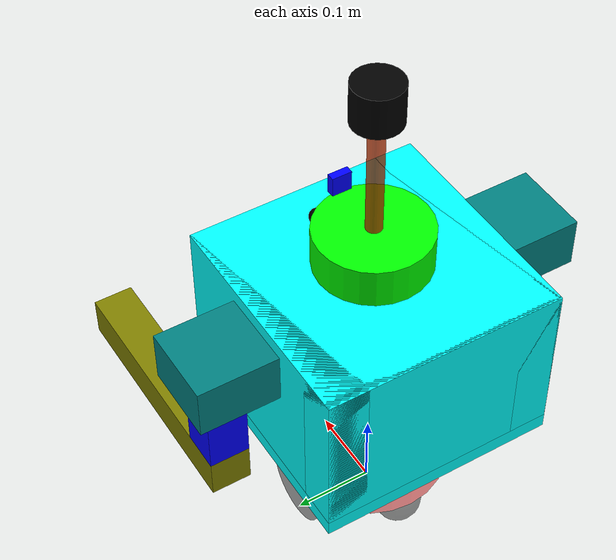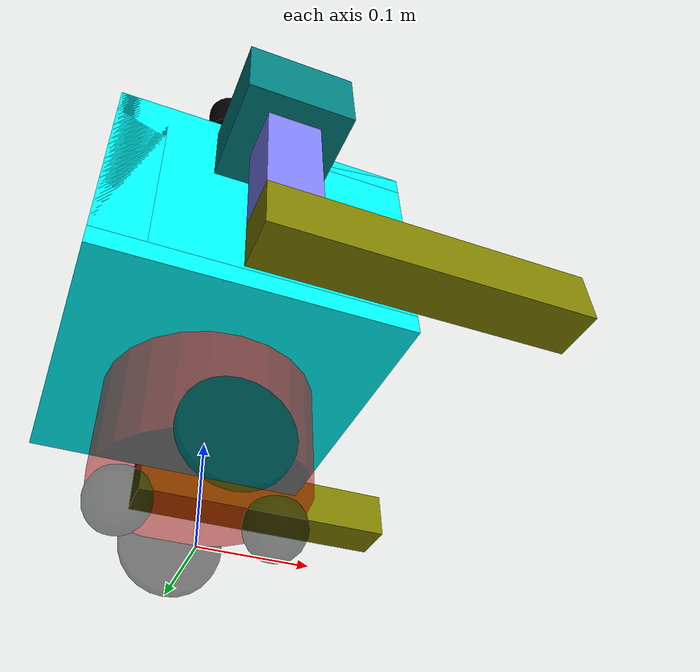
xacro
<!--
    组合小车底盘与摄像头与雷达 - Gazebo仿真版本
    包含完整的物理属性和传感器插件配置
-->
<robot name="mycar" xmlns:xacro="http://wiki.ros.org/xacro">

    <!-- 包含各个组件文件 -->

    <!-- 基础定义和宏 -->
    <xacro:include filename="head.xacro" />

    <!-- 小车底盘 -->
    <xacro:include filename="robot.urdf.xacro" />

    <!-- 摄像头 -->
    <xacro:include filename="demo06_car_camera.xacro" />

    <!-- 雷达 -->
    <xacro:include filename="demo07_car_laser.xacro" />

    <xacro:include filename="gazebo/move.xacro" />

</robot>

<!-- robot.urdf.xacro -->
<!--
    完整机器人模型 - Gazebo仿真版本
    包含底盘、轮子、身体、腿部、头部等部件
    参数集中定义，便于维护和修改
-->
<robot name="mycar" xmlns:xacro="http://www.ros.org/wiki/xacro">

    <!--                          参数定义区 (集中管理)                            -->

    <!-- 底盘参数 (base_link) -->
    <xacro:property name="base_radius" value="0.1" />        <!-- 底盘半径: 10cm -->
    <xacro:property name="base_height" value="0.1" />       <!-- 底盘高度: 10cm -->
    <xacro:property name="base_z_offset" value="0.1" />     <!-- 底盘离地高度 -->
    <xacro:property name="base_mass" value="2.0" />         <!-- 底盘质量: 2kg -->

    <!-- 驱动轮参数 -->
    <xacro:property name="wheel_radius" value="0.05" />     <!-- 轮子半径: 5cm -->
    <xacro:property name="wheel_length" value="0.01" />     <!-- 轮子宽度: 1cm -->
    <xacro:property name="wheel_y_offset" value="0.1" />    <!-- 轮子Y方向偏移 -->
    <xacro:property name="wheel_z_offset" value="-0.05" />  <!-- 轮子Z方向偏移 -->
    <xacro:property name="wheel_mass" value="0.2" />        <!-- 轮子质量: 0.2kg -->
    <xacro:property name="wheel_separation" value="0.2" />  <!-- 左右轮距 -->

    <!-- 万向轮参数 -->
    <xacro:property name="caster_radius" value="0.03" />    <!-- 万向轮半径: 3cm -->
    <xacro:property name="caster_mass" value="0.05" />      <!-- 万向轮质量: 0.05kg -->
    <xacro:property name="caster_front_x" value="0.07" />   <!-- 前万向轮X偏移 -->
    <xacro:property name="caster_back_x" value="-0.07" />   <!-- 后万向轮X偏移 -->
    <xacro:property name="caster_z_offset" value="-0.07" /> <!-- 万向轮Z偏移 -->

    <!-- 身体平台参数 (box1-box5) -->
    <!-- 底层平台 box1 -->
    <xacro:property name="box1_x" value="0.3" />
    <xacro:property name="box1_y" value="0.3" />
    <xacro:property name="box1_z" value="0.02" />
    <xacro:property name="box1_mass" value="0.5" />
    <xacro:property name="box1_z_offset" value="0.07" />

    <!-- 后面板 box2 -->
    <xacro:property name="box2_x" value="0.05" />
    <xacro:property name="box2_y" value="0.3" />
    <xacro:property name="box2_z" value="0.2" />
    <xacro:property name="box2_mass" value="0.3" />
    <xacro:property name="box2_x_offset" value="-0.125" />
    <xacro:property name="box2_z_offset" value="0.18" />

    <!-- 左侧板 box3 -->
    <xacro:property name="box3_x" value="0.3" />
    <xacro:property name="box3_y" value="0.05" />
    <xacro:property name="box3_z" value="0.2" />
    <xacro:property name="box3_mass" value="0.3" />
    <xacro:property name="box3_y_offset" value="0.125" />
    <xacro:property name="box3_z_offset" value="0.18" />

    <!-- 右侧板 box4 -->
    <xacro:property name="box4_x" value="0.3" />
    <xacro:property name="box4_y" value="0.05" />
    <xacro:property name="box4_z" value="0.2" />
    <xacro:property name="box4_mass" value="0.3" />
    <xacro:property name="box4_y_offset" value="-0.125" />
    <xacro:property name="box4_z_offset" value="0.18" />

    <!-- 顶层平台 box5 -->
    <xacro:property name="box5_x" value="0.3" />
    <xacro:property name="box5_y" value="0.3" />
    <xacro:property name="box5_z" value="0.02" />
    <xacro:property name="box5_mass" value="0.5" />
    <xacro:property name="box5_z_offset" value="0.27" />

    <!-- 腿部参数 -->
    <!-- 左右腿上段 -->
    <xacro:property name="leg_x" value="0.05" />
    <xacro:property name="leg_y" value="0.05" />
    <xacro:property name="leg_z" value="0.16" />
    <xacro:property name="leg_mass" value="0.2" />
    <xacro:property name="leg_y_offset" value="0.08" />

    <!-- 左右腿下段 (leg1) -->
    <xacro:property name="leg1_x" value="0.3" />
    <xacro:property name="leg1_y" value="0.05" />
    <xacro:property name="leg1_z" value="0.05" />
    <xacro:property name="leg1_mass" value="0.3" />
    <xacro:property name="leg1_x_offset" value="0.125" />
    <xacro:property name="leg1_z_offset" value="-0.105" />

    <!-- 头部参数 -->
    <!-- 脖子 -->
    <xacro:property name="neck_radius" value="0.04" />
    <xacro:property name="neck_height" value="0.01" />
    <xacro:property name="neck_mass" value="0.1" />
    <xacro:property name="neck_z_offset" value="0.015" />

    <!-- 头部 -->
    <xacro:property name="head_radius" value="0.07" />
    <xacro:property name="head_height" value="0.05" />
    <xacro:property name="head_mass" value="0.3" />
    <xacro:property name="head_z_offset" value="0.03" />

    <!-- 眼睛 -->
    <xacro:property name="eye_radius" value="0.01" />
    <xacro:property name="eye_mass" value="0.01" />
    <xacro:property name="eye1_y_offset" value="0.035" />
    <xacro:property name="eye2_y_offset" value="-0.035" />
    <xacro:property name="eye_x_offset" value="0.06" />
    <xacro:property name="eye_z_offset" value="0.01" />

    <!-- 关节部件参数 -->
    <xacro:property name="joint_x" value="0.1" />
    <xacro:property name="joint_y" value="0.14" />
    <xacro:property name="joint_z" value="0.065" />
    <xacro:property name="joint_mass" value="0.2" />
    <xacro:property name="joint_y_offset" value="0.055" />
    <xacro:property name="joint_z_offset" value="0.05" />

    <!-- body_link 参数 -->
    <xacro:property name="body_radius" value="0.025" />
    <xacro:property name="body_height" value="0.01" />
    <xacro:property name="body_mass" value="0.1" />
    <xacro:property name="body_z_offset" value="0.055" />

    <!--                            宏定义区                                      -->

    <!-- 惯性矩阵计算宏 -->

    <!-- 圆柱体惯性宏 -->
    <xacro:macro name="cylinder_inertial" params="mass radius length">
        <inertial>
            <mass value="${mass}" />
            <origin xyz="0 0 0" rpy="0 0 0" />
            <inertia ixx="${mass * (3*radius*radius + length*length) / 12}"
                     ixy="0" ixz="0"
                     iyy="${mass * (3*radius*radius + length*length) / 12}"
                     iyz="0"
                     izz="${mass * radius*radius / 2}" />
        </inertial>
    </xacro:macro>

    <!-- 长方体惯性宏 -->
    <xacro:macro name="box_inertial" params="mass x y z">
        <inertial>
            <mass value="${mass}" />
            <origin xyz="0 0 0" rpy="0 0 0" />
            <inertia ixx="${mass * (y*y + z*z) / 12}"
                     ixy="0" ixz="0"
                     iyy="${mass * (x*x + z*z) / 12}"
                     iyz="0"
                     izz="${mass * (x*x + y*y) / 12}" />
        </inertial>
    </xacro:macro>

    <!-- 球体惯性宏 -->
    <xacro:macro name="sphere_inertial" params="mass radius">
        <inertial>
            <mass value="${mass}" />
            <origin xyz="0 0 0" rpy="0 0 0" />
            <inertia ixx="${2 * mass * radius * radius / 5}"
                     ixy="0" ixz="0"
                     iyy="${2 * mass * radius * radius / 5}"
                     iyz="0"
                     izz="${2 * mass * radius * radius / 5}" />
        </inertial>
    </xacro:macro>

    <!-- 材质定义宏 -->
    <xacro:macro name="baselink_material">
        <material name="baselink_color">
            <color rgba="1 0 0 0.5" />
        </material>
    </xacro:macro>

    <xacro:macro name="wheel_material">
        <material name="wheel_color">
            <color rgba="0.0 0.0 0.0 0.5" />
        </material>
    </xacro:macro>

    <!-- 驱动轮宏定义 -->
    <xacro:macro name="drive_wheel" params="name y_offset">
        <link name="${name}">
            <visual>
                <geometry>
                    <cylinder radius="${wheel_radius}" length="${wheel_length}" />
                </geometry>
                <origin xyz="0 0 0" rpy="1.5708 0 0" />
                <xacro:wheel_material />
            </visual>
            <collision>
                <geometry>
                    <cylinder radius="${wheel_radius}" length="${wheel_length}" />
                </geometry>
                <origin xyz="0 0 0" rpy="1.5708 0 0" />
            </collision>
            <xacro:cylinder_inertial mass="${wheel_mass}" radius="${wheel_radius}" length="${wheel_length}" />
        </link>

        <joint name="${name}2_link" type="continuous">
            <parent link="base_link" />
            <child link="${name}" />
            <origin xyz="0 ${y_offset} ${wheel_z_offset}" />
            <axis xyz="0 1 0" />
        </joint>
    </xacro:macro>

    <!-- 万向轮宏定义 -->
    <xacro:macro name="caster_wheel" params="name x_offset">
        <link name="${name}">
            <visual>
                <geometry>
                    <sphere radius="${caster_radius}" />
                </geometry>
                <origin xyz="0 0 0" rpy="0 0 0" />
                <xacro:wheel_material />
            </visual>
            <collision>
                <geometry>
                    <sphere radius="${caster_radius}" />
                </geometry>
                <origin xyz="0 0 0" rpy="0 0 0" />
            </collision>
            <xacro:sphere_inertial mass="${caster_mass}" radius="${caster_radius}" />
        </link>

        <joint name="${name}2_link" type="continuous">
            <parent link="base_link" />
            <child link="${name}" />
            <origin xyz="${x_offset} 0 ${caster_z_offset}" />
            <axis xyz="1 1 1" />
        </joint>
    </xacro:macro>

    <!-- 身体平台宏定义 -->
    <xacro:macro name="box_platform" params="name x y z mass x_offset y_offset z_offset joint_type">
        <link name="${name}">
            <visual>
                <geometry>
                    <box size="${x} ${y} ${z}"/>
                </geometry>
                <origin xyz="0 0 0" rpy="0 0 0" />
                <material name="box_color">
                    <color rgba="0.0 1.0 1.0 1" />
                </material>
            </visual>
            <collision>
                <geometry>
                    <box size="${x} ${y} ${z}"/>
                </geometry>
            </collision>
            <xacro:box_inertial mass="${mass}" x="${x}" y="${y}" z="${z}" />
        </link>

        <joint name="${name}2_link" type="${joint_type}">
            <parent link="base_link" />
            <child link="${name}" />
            <origin xyz="${x_offset} ${y_offset} ${z_offset}" />
            <xacro:if value="${joint_type != 'fixed'}">
                <axis xyz="0 1 0" />
            </xacro:if>
        </joint>
    </xacro:macro>

    <!-- 腿部宏定义 -->
    <xacro:macro name="leg" params="name parent y_offset color_r color_g color_b joint_type">
        <link name="${name}">
            <visual>
                <geometry>
                    <box size="${leg_x} ${leg_y} ${leg_z}" />
                </geometry>
                <origin xyz="0 0 0" rpy="0 0 0" />
                <material name="${name}_color">
                    <color rgba="${color_r} ${color_g} ${color_b} 1" />
                </material>
            </visual>
            <collision>
                <geometry>
                    <box size="${leg_x} ${leg_y} ${leg_z}" />
                </geometry>
            </collision>
            <xacro:box_inertial mass="${leg_mass}" x="${leg_x}" y="${leg_y}" z="${leg_z}" />
        </link>

        <joint name="${name}2_link" type="${joint_type}">
            <parent link="${parent}" />
            <child link="${name}" />
            <origin xyz="0 ${y_offset} 0" />
            <xacro:if value="${joint_type == 'continuous'}">
                <axis xyz="0 1 0" />
            </xacro:if>
        </joint>

        <!-- 腿下段 -->
        <link name="${name}1">
            <visual>
                <geometry>
                    <box size="${leg1_x} ${leg1_y} ${leg1_z}" />
                </geometry>
                <origin xyz="0 0 0" rpy="0 0 0" />
                <material name="${name}1_color">
                    <color rgba="0.5 0.5 0 1" />
                </material>
            </visual>
            <collision>
                <geometry>
                    <box size="${leg1_x} ${leg1_y} ${leg1_z}" />
                </geometry>
            </collision>
            <xacro:box_inertial mass="${leg1_mass}" x="${leg1_x}" y="${leg1_y}" z="${leg1_z}" />
        </link>

        <joint name="${name}12_link" type="${joint_type}">
            <parent link="${name}" />
            <child link="${name}1" />
            <origin xyz="${leg1_x_offset} 0 ${leg1_z_offset}" />
            <xacro:if value="${joint_type == 'continuous'}">
                <axis xyz="0 1 0" />
            </xacro:if>
        </joint>
    </xacro:macro>

    <!-- 眼睛宏定义 -->
    <xacro:macro name="eye" params="name y_offset joint_type">
        <link name="${name}">
            <visual>
                <geometry>
                    <sphere radius="${eye_radius}" />
                </geometry>
                <origin xyz="0 0 0" rpy="0 0 0" />
                <material name="${name}_color">
                    <color rgba="0 0 0 1" />
                </material>
            </visual>
            <collision>
                <geometry>
                    <sphere radius="${eye_radius}" />
                </geometry>
            </collision>
            <xacro:sphere_inertial mass="${eye_mass}" radius="${eye_radius}" />
        </link>

        <joint name="${name}2_link" type="${joint_type}">
            <parent link="head_link" />
            <child link="${name}" />
            <origin xyz="${eye_x_offset} ${y_offset} ${eye_z_offset}" />
            <xacro:if value="${joint_type == 'continuous'}">
                <axis xyz="1 1 1" />
            </xacro:if>
        </joint>
    </xacro:macro>

    <!-- 关节部件宏定义 -->
    <xacro:macro name="arm_joint" params="name parent y_offset joint_type">
        <link name="${name}">
            <visual>
                <geometry>
                    <box size="${joint_x} ${joint_y} ${joint_z}" />
                </geometry>
                <origin xyz="0 0 0" rpy="0 0 0" />
                <material name="${name}_color">
                    <color rgba="0 0.5 0.5 1" />
                </material>
            </visual>
            <collision>
                <geometry>
                    <box size="${joint_x} ${joint_y} ${joint_z}" />
                </geometry>
            </collision>
            <xacro:box_inertial mass="${joint_mass}" x="${joint_x}" y="${joint_y}" z="${joint_z}" />
        </link>

        <joint name="${name}2_link" type="${joint_type}">
            <parent link="${parent}" />
            <child link="${name}" />
            <origin xyz="0 ${y_offset} ${joint_z_offset}" />
            <xacro:if value="${joint_type == 'continuous'}">
                <axis xyz="0 1 0" />
            </xacro:if>
        </joint>
    </xacro:macro>

    <!--                          机器人结构区                                    -->

    <!-- base_footprint -->
    <link name="base_footprint">
        <visual>
            <geometry>
                <sphere radius="0.001" />
            </geometry>
        </visual>
    </link>

    <!-- base_link - 圆柱底盘 -->
    <link name="base_link">
        <visual>
            <geometry>
                <cylinder radius="${base_radius}" length="${base_height}" />
            </geometry>
            <origin xyz="0 0 0" rpy="0 0 0" />
            <xacro:baselink_material />
        </visual>
        <collision>
            <geometry>
                <cylinder radius="${base_radius}" length="${base_height}" />
            </geometry>
            <origin xyz="0 0 0" rpy="0 0 0" />
        </collision>
        <xacro:cylinder_inertial mass="${base_mass}" radius="${base_radius}" length="${base_height}" />
    </link>

    <joint name="link2footprint" type="fixed">
        <parent link="base_footprint" />
        <child link="base_link"/>
        <origin xyz="0 0 ${base_z_offset}" />
    </joint>

    <!-- 左驱动轮 -->
    <xacro:drive_wheel name="left_wheel" y_offset="${wheel_y_offset}" />

    <!-- 右驱动轮 -->
    <xacro:drive_wheel name="right_wheel" y_offset="-${wheel_y_offset}" />

    <!-- 前万向轮 -->
    <xacro:caster_wheel name="front_wheel" x_offset="${caster_front_x}" />

    <!-- 后万向轮 -->
    <xacro:caster_wheel name="back_wheel" x_offset="${caster_back_x}" />

    <!-- body_link -->
    <link name="body_link">
        <visual>
            <geometry>
                <cylinder radius="${body_radius}" length="${body_height}" />
            </geometry>
            <origin xyz="0 0 0" rpy="0 0 0" />
            <material name="bodylink_color">
                <color rgba="0 0.5 0.5 0.5" />
            </material>
        </visual>
        <collision>
            <geometry>
                <cylinder radius="${body_radius}" length="${body_height}" />
            </geometry>
        </collision>
        <xacro:cylinder_inertial mass="${body_mass}" radius="${body_radius}" length="${body_height}" />
    </link>

    <joint name="body2footprint" type="fixed">
        <parent link="base_link" />
        <child link="body_link" />
        <origin xyz="0 0 ${body_z_offset}" />
    </joint>

    <!-- 身体平台 box1-box5 -->
    <xacro:box_platform name="box1" x="${box1_x}" y="${box1_y}" z="${box1_z}"
                        mass="${box1_mass}" x_offset="0" y_offset="0" z_offset="${box1_z_offset}"
                        joint_type="fixed" />

    <xacro:box_platform name="box2" x="${box2_x}" y="${box2_y}" z="${box2_z}"
                        mass="${box2_mass}" x_offset="${box2_x_offset}" y_offset="0" z_offset="${box2_z_offset}"
                        joint_type="fixed" />

    <xacro:box_platform name="box3" x="${box3_x}" y="${box3_y}" z="${box3_z}"
                        mass="${box3_mass}" x_offset="0" y_offset="${box3_y_offset}" z_offset="${box3_z_offset}"
                        joint_type="fixed" />

    <xacro:box_platform name="box4" x="${box4_x}" y="${box4_y}" z="${box4_z}"
                        mass="${box4_mass}" x_offset="0" y_offset="${box4_y_offset}" z_offset="${box4_z_offset}"
                        joint_type="fixed" />

    <xacro:box_platform name="box5" x="${box5_x}" y="${box5_y}" z="${box5_z}"
                        mass="${box5_mass}" x_offset="0" y_offset="0" z_offset="${box5_z_offset}"
                        joint_type="fixed" />

    <!-- 腿部 -->
    <xacro:leg name="left_leg" parent="box3" y_offset="${leg_y_offset}"
               color_r="0.0" color_g="0.0" color_b="1.0" joint_type="fixed" />
    <xacro:leg name="right_leg" parent="box4" y_offset="-${leg_y_offset}"
               color_r="0.5" color_g="0.5" color_b="1.0" joint_type="fixed" />

    <!-- 脖子 -->
    <link name="neck_link">
        <visual>
            <geometry>
                <cylinder radius="${neck_radius}" length="${neck_height}" />
            </geometry>
            <origin xyz="0 0 0" rpy="0 0 0" />
            <material name="neck_color">
                <color rgba="0.5 0.1 0.1 1" />
            </material>
        </visual>
        <collision>
            <geometry>
                <cylinder radius="${neck_radius}" length="${neck_height}" />
            </geometry>
        </collision>
        <xacro:cylinder_inertial mass="${neck_mass}" radius="${neck_radius}" length="${neck_height}" />
    </link>

    <joint name="neck2footprint" type="fixed">
        <parent link="box5" />
        <child link="neck_link" />
        <origin xyz="0 0 ${neck_z_offset}" />
    </joint>

    <!-- 头部 -->
    <link name="head_link">
        <visual>
            <geometry>
                <cylinder radius="${head_radius}" length="${head_height}" />
            </geometry>
            <origin xyz="0 0 0" rpy="0 0 0" />
            <material name="head_color">
                <color rgba="0 1 0 1" />
            </material>
        </visual>
        <collision>
            <geometry>
                <cylinder radius="${head_radius}" length="${head_height}" />
            </geometry>
        </collision>
        <xacro:cylinder_inertial mass="${head_mass}" radius="${head_radius}" length="${head_height}" />
    </link>

    <joint name="head2footprint" type="fixed">
        <parent link="neck_link" />
        <child link="head_link" />
        <origin xyz="0 0 ${head_z_offset}" />
    </joint>

    <!-- 眼睛 -->
    <xacro:eye name="eye1" y_offset="${eye1_y_offset}" joint_type="fixed" />
    <xacro:eye name="eye2" y_offset="${eye2_y_offset}" joint_type="fixed" />

    <!-- 手臂关节 -->
    <xacro:arm_joint name="left_joint" parent="box3" y_offset="${joint_y_offset}" joint_type="fixed" />
    <xacro:arm_joint name="right_joint" parent="box4" y_offset="-${joint_y_offset}" joint_type="fixed" />

    <!--                       Gazebo 仿真配置区                                  -->

    <!-- Gazebo 材质设置 -->

    <!-- 底盘 - 红色 -->
    <gazebo reference="base_link">
        <material>Gazebo/Red</material>
    </gazebo>

    <!-- 驱动轮 - 深灰色，高摩擦 -->
    <gazebo reference="left_wheel">
        <material>Gazebo/Black</material>
        <mu1>1.5</mu1>
        <mu2>1.5</mu2>
        <kp>1000000.0</kp>
        <kd>100.0</kd>
        <minDepth>0.001</minDepth>
        <maxVel>1.0</maxVel>
    </gazebo>

    <gazebo reference="right_wheel">
        <material>Gazebo/Black</material>
        <mu1>1.5</mu1>
        <mu2>1.5</mu2>
        <kp>1000000.0</kp>
        <kd>100.0</kd>
        <minDepth>0.001</minDepth>
        <maxVel>1.0</maxVel>
    </gazebo>

    <!-- 万向轮 - 浅灰色，低摩擦 -->
    <gazebo reference="front_wheel">
        <material>Gazebo/White</material>
        <mu1>0.0</mu1>
        <mu2>0.0</mu2>
    </gazebo>

    <gazebo reference="back_wheel">
        <material>Gazebo/White</material>
        <mu1>0.0</mu1>
        <mu2>0.0</mu2>
    </gazebo>

    <!-- body_link - 青绿色 -->
    <gazebo reference="body_link">
        <material>Gazebo/Teal</material>
    </gazebo>

    <!-- 身体平台 - 橙色 -->
    <gazebo reference="box1">
        <material>Gazebo/Orange</material>
    </gazebo>

    <gazebo reference="box2">
        <material>Gazebo/Orange</material>
    </gazebo>

    <gazebo reference="box3">
        <material>Gazebo/Orange</material>
    </gazebo>

    <gazebo reference="box4">
        <material>Gazebo/Orange</material>
    </gazebo>

    <gazebo reference="box5">
        <material>Gazebo/Orange</material>
    </gazebo>

    <!-- 腿部 - 蓝色 -->
    <gazebo reference="left_leg">
        <material>Gazebo/Blue</material>
    </gazebo>

    <gazebo reference="right_leg">
        <material>Gazebo/Blue</material>
    </gazebo>

    <gazebo reference="left_leg1">
        <material>Gazebo/SkyBlue</material>
    </gazebo>

    <gazebo reference="right_leg1">
        <material>Gazebo/SkyBlue</material>
    </gazebo>

    <!-- 脖子 - 棕色 -->
    <gazebo reference="neck_link">
        <material>Gazebo/Wood</material>
    </gazebo>

    <!-- 头部 - 绿色 -->
    <gazebo reference="head_link">
        <material>Gazebo/Green</material>
    </gazebo>

    <!-- 眼睛 - 黑色 -->
    <gazebo reference="eye1">
        <material>Gazebo/Black</material>
    </gazebo>

    <gazebo reference="eye2">
        <material>Gazebo/Black</material>
    </gazebo>

    <!-- 手臂关节 - 紫色 -->
    <gazebo reference="left_joint">
        <material>Gazebo/Purple</material>
    </gazebo>

    <gazebo reference="right_joint">
        <material>Gazebo/Purple</material>
    </gazebo>

    <!-- Gazebo 差速驱动控制器插件 -->
    <gazebo>
        <plugin name="differential_drive_controller" filename="libgazebo_ros_diff_drive.so">
            <leftJoint>left_wheel2_link</leftJoint>
            <rightJoint>right_wheel2_link</rightJoint>
            <wheelSeparation>${wheel_separation}</wheelSeparation>
            <wheelDiameter>${2 * wheel_radius}</wheelDiameter>
            <maxWheelTorque>10</maxWheelTorque>
            <maxWheelAcceleration>1.0</maxWheelAcceleration>
            <commandTopic>cmd_vel</commandTopic>
            <odometryTopic>odom</odometryTopic>
            <odometryFrame>odom</odometryFrame>
            <robotBaseFrame>base_footprint</robotBaseFrame>
            <publishWheelTF>true</publishWheelTF>
            <publishOdomTF>true</publishOdomTF>
            <updateRate>50.0</updateRate>
        </plugin>
    </gazebo>

    <!-- Gazebo 关节状态发布插件 -->
    <gazebo>
        <plugin name="joint_state_publisher" filename="libgazebo_ros_joint_state_publisher.so">
            <jointName>left_wheel2_link, right_wheel2_link, front_wheel2_link, back_wheel2_link</jointName>
            <updateRate>50.0</updateRate>
        </plugin>
    </gazebo>

</robot>

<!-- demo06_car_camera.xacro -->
<!--
    摄像头相关的 xacro 文件 - Gazebo仿真版本
    包含碰撞、惯性属性和摄像头传感器插件
-->
<robot name="my_camera" xmlns:xacro="http://wiki.ros.org/xacro">

    <!-- 摄像头参数定义 -->
    <xacro:property name="camera_length" value="0.01" /> <!-- 摄像头长度(x) -->
    <xacro:property name="camera_width" value="0.025" /> <!-- 摄像头宽度(y) -->
    <xacro:property name="camera_height" value="0.025" /> <!-- 摄像头高度(z) -->
    <xacro:property name="camera_x" value="0.07" /> <!-- 摄像头安装的x坐标 -->
    <xacro:property name="camera_y" value="0.0" /> <!-- 摄像头安装的y坐标 -->
    <xacro:property name="camera_z" value="${head_height/ 2 + camera_height / 2}" /> <!-- 摄像头安装的z坐标 -->
    <xacro:property name="camera_mass" value="0.05" /> <!-- 摄像头质量 kg -->

    <!-- 材质定义 -->
    <material name="blue">
        <color rgba="0 0 1 1"/>
    </material>

    <!-- 惯性矩阵计算宏 - 长方体 -->
    <xacro:macro name="camera_box_inertial" params="mass x y z">
        <inertial>
            <mass value="${mass}" />
            <origin xyz="0 0 0" rpy="0 0 0" />
            <!-- 长方体惯性公式: Ixx = m*(y^2+z^2)/12, Iyy = m*(x^2+z^2)/12, Izz = m*(x^2+y^2)/12 -->
            <inertia ixx="${mass * (y*y + z*z) / 12}"
                     ixy="0"
                     ixz="0"
                     iyy="${mass * (x*x + z*z) / 12}"
                     iyz="0"
                     izz="${mass * (x*x + y*y) / 12}" />
        </inertial>
    </xacro:macro>

    <!-- 摄像头 Link 和 Joint -->
    <link name="camera">
        <!-- 可视化 -->
        <visual>
            <geometry>
                <box size="${camera_length} ${camera_width} ${camera_height}" />
            </geometry>
            <origin xyz="0.0 0.0 0.0" rpy="0.0 0.0 0.0" />
            <material name="blue" />
        </visual>

        <!-- 碰撞检测 - Gazebo必需 -->
        <collision>
            <geometry>
                <box size="${camera_length} ${camera_width} ${camera_height}" />
            </geometry>
            <origin xyz="0.0 0.0 0.0" rpy="0.0 0.0 0.0" />
        </collision>

        <!-- 惯性属性 - Gazebo物理仿真必需 -->
        <xacro:camera_box_inertial mass="${camera_mass}"
                                   x="${camera_length}"
                                   y="${camera_width}"
                                   z="${camera_height}" />
    </link>

    <joint name="camera2base_link" type="fixed">
        <parent link="head_link" />
        <child link="camera" />
        <origin xyz="${camera_x} ${camera_y} ${camera_z}" />
    </joint>

    <!-- 摄像头光学坐标系 Link -->
    <link name="camera_optical_frame"/>

    <joint name="camera_optical_joint" type="fixed">
        <parent link="camera"/>
        <child link="camera_optical_frame"/>
        <!-- 光学坐标系转换: x前->z前, y左->x左, z上->y下 -->
        <origin xyz="0 0 0" rpy="-1.57079632679 0 -1.57079632679"/>
    </joint>

    <!-- Gazebo 材质设置 -->
    <gazebo reference="camera">
        <material>Gazebo/Blue</material>
    </gazebo>

    <!-- Gazebo 摄像头传感器插件 -->
    <gazebo reference="camera">
        <sensor type="depth" name="camera_sensor">
            <!-- 传感器姿态 -->
            <pose>0 0 0 0 0 0</pose>

            <!-- 更新频率 -->
            <update_rate>30.0</update_rate> <!-- Hz -->

            <!-- 摄像头参数 -->
            <camera>
                <!-- 分辨率 -->
                <horizontal_fov>1.3962634</horizontal_fov> <!-- 水平视场角 80度 -->
                <image>
                    <width>640</width>
                    <height>480</height>
                    <format>R8G8B8</format> <!-- 图像格式 -->
                </image>

                <!-- 裁剪距离 -->
                <clip>
                    <near>0.02</near> <!-- 近裁剪面 0.02m -->
                    <far>300</far> <!-- 远裁剪面 300m -->
                </clip>

                <!-- 噪声模型 -->
                <noise>
                    <type>gaussian</type>
                    <mean>0.0</mean>
                    <stddev>0.007</stddev>
                </noise>
            </camera>

            <!-- ROS接口插件 -->
            <plugin name="camera_controller" filename="libgazebo_ros_safe_rgbd.so">
                <alwaysOn>true</alwaysOn>
                <updateRate>30.0</updateRate>

                <!-- ROS话题名称 -->
                <cameraName>robot0/camera</cameraName> <!-- 话题前缀 -->
                <imageTopicName>color/image_raw</imageTopicName>
                <cameraInfoTopicName>camera_info</cameraInfoTopicName> <!-- 相机信息话题 -->
                <depthImageTopicName>depth/image_rect_raw</depthImageTopicName>
                <depthImageCameraInfoTopicName>depth/camera_info</depthImageCameraInfoTopicName>
                <pointCloudTopicName>depth/points</pointCloudTopicName>

                <!-- TF坐标系 -->
                <frameName>camera_optical_frame</frameName>

                <!-- 其他参数 -->
                <hackBaseline>0.07</hackBaseline> <!-- 基线距离，用于立体相机 -->
                <distortionK1>0.0</distortionK1>
                <distortionK2>0.0</distortionK2>
                <distortionK3>0.0</distortionK3>
                <distortionT1>0.0</distortionT1>
                <distortionT2>0.0</distortionT2>
            </plugin>
        </sensor>
    </gazebo>

</robot>

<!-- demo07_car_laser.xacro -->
<!--
    小车底盘添加雷达 - Gazebo仿真版本
-->
<robot name="my_laser" xmlns:xacro="http://wiki.ros.org/xacro">

    <!-- 雷达支架参数 -->
    <xacro:property name="support_length" value="0.15" /> <!-- 支架长度 -->
    <xacro:property name="support_radius" value="0.01" /> <!-- 支架半径 -->
    <xacro:property name="support_x" value="0.0" /> <!-- 支架安装的x坐标 -->
    <xacro:property name="support_y" value="0.0" /> <!-- 支架安装的y坐标 -->
    <xacro:property name="support_z" value="${head_height/ 2 + support_length / 2}" /> <!-- 支架安装的z坐标 -->

    <!-- 支架质量和惯性参数 -->
    <xacro:property name="support_mass" value="0.1" /> <!-- 支架质量 kg -->

    <!-- 雷达参数 -->
    <xacro:property name="laser_length" value="0.05" /> <!-- 雷达长度 -->
    <xacro:property name="laser_radius" value="0.03" /> <!-- 雷达半径 -->
    <xacro:property name="laser_x" value="0.0" /> <!-- 雷达安装的x坐标 -->
    <xacro:property name="laser_y" value="0.0" /> <!-- 雷达安装的y坐标 -->
    <xacro:property name="laser_z" value="${support_length / 2 + laser_length / 2}" /> <!-- 雷达安装的z坐标 -->

    <!-- 雷达质量和惯性参数 -->
    <xacro:property name="laser_mass" value="0.2" /> <!-- 雷达质量 kg -->

    <!-- 材质定义 -->
    <material name="green">
        <color rgba="0.8 0.2 0.0 0.8"/>
    </material>

    <material name="black">
        <color rgba="0.0 0.0 0.0 1.0"/>
    </material>

    <!-- 雷达支架 Link 和 Joint -->
    <link name="support">
        <!-- 可视化 -->
        <visual>
            <geometry>
                <cylinder radius="${support_radius}" length="${support_length}" />
            </geometry>
            <origin xyz="0.0 0.0 0.0" rpy="0.0 0.0 0.0" />
            <material name="green" />
        </visual>

        <!-- 碰撞检测 - Gazebo必需 -->
        <collision>
            <geometry>
                <cylinder radius="${support_radius}" length="${support_length}" />
            </geometry>
            <origin xyz="0.0 0.0 0.0" rpy="0.0 0.0 0.0" />
        </collision>

        <!-- 惯性属性 - Gazebo物理仿真必需 -->
        <inertial>
            <mass value="${support_mass}" />
            <origin xyz="0.0 0.0 0.0" rpy="0.0 0.0 0.0" />
            <!-- 圆柱体惯性公式: Ixx = Iyy = m*(3*r^2 + h^2)/12, Izz = m*r^2/2 -->
            <inertia ixx="${support_mass * (3 * support_radius * support_radius + support_length * support_length) / 12}"
                     ixy="0.0"
                     ixz="0.0"
                     iyy="${support_mass * (3 * support_radius * support_radius + support_length * support_length) / 12}"
                     iyz="0.0"
                     izz="${support_mass * support_radius * support_radius / 2}" />
        </inertial>
    </link>

    <joint name="support2base_link" type="fixed">
        <parent link="head_link" />
        <child link="support" />
        <origin xyz="${support_x} ${support_y} ${support_z}" />
    </joint>

    <!-- 雷达 Link 和 Joint -->
    <link name="laser">
        <!-- 可视化 -->
        <visual>
            <geometry>
                <cylinder radius="${laser_radius}" length="${laser_length}" />
            </geometry>
            <origin xyz="0.0 0.0 0.0" rpy="0.0 0.0 0.0" />
            <material name="black" />
        </visual>

        <!-- 碰撞检测 - Gazebo必需 -->
        <collision>
            <geometry>
                <cylinder radius="${laser_radius}" length="${laser_length}" />
            </geometry>
            <origin xyz="0.0 0.0 0.0" rpy="0.0 0.0 0.0" />
        </collision>

        <!-- 惯性属性 - Gazebo物理仿真必需 -->
        <inertial>
            <mass value="${laser_mass}" />
            <origin xyz="0.0 0.0 0.0" rpy="0.0 0.0 0.0" />
            <!-- 圆柱体惯性公式 -->
            <inertia ixx="${laser_mass * (3 * laser_radius * laser_radius + laser_length * laser_length) / 12}"
                     ixy="0.0"
                     ixz="0.0"
                     iyy="${laser_mass * (3 * laser_radius * laser_radius + laser_length * laser_length) / 12}"
                     iyz="0.0"
                     izz="${laser_mass * laser_radius * laser_radius / 2}" />
        </inertial>
    </link>

    <joint name="laser2support" type="fixed">
        <parent link="support" />
        <child link="laser" />
        <origin xyz="${laser_x} ${laser_y} ${laser_z}" />
    </joint>

    <!-- Gazebo 颜色和物理属性设置 -->

    <!-- 支架在Gazebo中的颜色 -->
    <gazebo reference="support">
        <material>Gazebo/Orange</material>
    </gazebo>

    <!-- 雷达在Gazebo中的颜色 -->
    <gazebo reference="laser">
        <material>Gazebo/Black</material>
    </gazebo>

    <!-- Gazebo 雷达传感器插件 -->
    <gazebo reference="laser">
        <sensor type="ray" name="laser_sensor">
            <pose>0 0 0 0 0 0</pose>
            <visualize>true</visualize> <!-- 在Gazebo中可视化激光射线 -->
            <update_rate>1</update_rate> <!-- 更新频率 Hz -->
            <ray>
                <scan>
                    <horizontal>
                        <samples>360</samples> <!-- 扫描采样点数 -->
                        <resolution>1</resolution> <!-- 角度分辨率 -->
                        <min_angle>-3.14159</min_angle> <!-- 最小角度 -π -->
                        <max_angle>3.14159</max_angle> <!-- 最大角度 π -->
                    </horizontal>
                </scan>
                <range>
                    <min>0.10</min> <!-- 最小距离 0.1m -->
                    <max>30.0</max> <!-- 最大距离 30m -->
                    <resolution>0.01</resolution> <!-- 距离分辨率 -->
                </range>
                <noise>
                    <type>gaussian</type> <!-- 高斯噪声 -->
                    <mean>0.0</mean>
                    <stddev>0.01</stddev> <!-- 标准差 -->
                </noise>
            </ray>

            <!-- ROS接口插件 -->
            <plugin name="gazebo_ros_laser" filename="libgazebo_ros_laser.so">
                <topicName>/scan</topicName> <!-- ROS话题名称 -->
                <frameName>laser</frameName> <!-- TF坐标系名称 -->
            </plugin>
        </sensor>
    </gazebo>

</robot>
